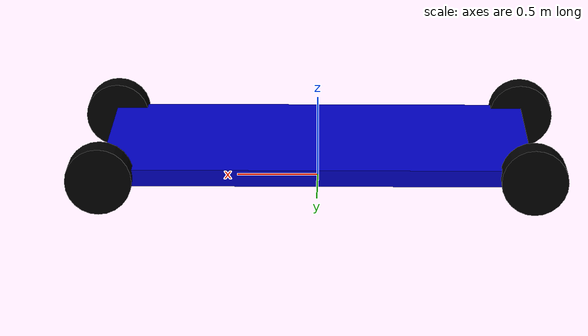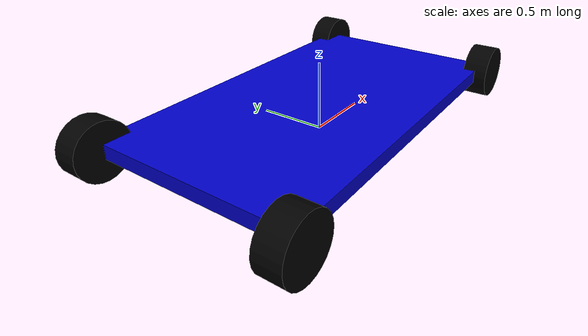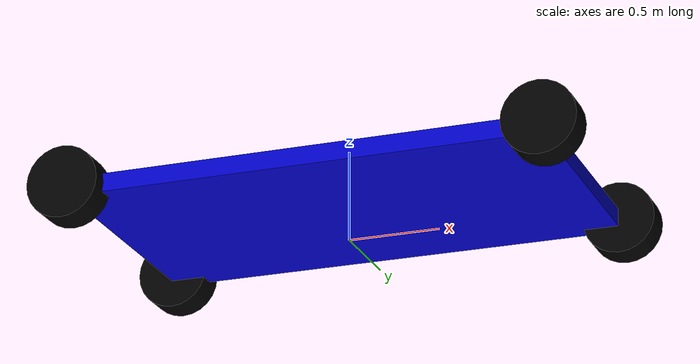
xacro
<?xml version="1.0"?>

<robot name="AckVcl" xmlns:xacro="http://ros.org/wiki/xacro">

 <xacro:property name="chassis_dx" value="2.6" />
 <xacro:property name="chassis_dy" value="1.5" />
 <xacro:property name="chassis_dz" value="0.1" />
 <xacro:property name="wheel_radius" value="0.2" />
 <xacro:property name="wheel_width" value="0.18" />
 <xacro:property name="chassis_z0" value="0.2" />

  <xacro:property name="pi" value="3.1415" />

 <xacro:property name="wheel_x0" value="${chassis_dx/2}" />
 <xacro:property name="wheel_y0" value="${(chassis_dy/2)  + (0.6*wheel_width)}" />

 <xacro:property name="steer_limit" value="${90.0 * pi/180.0}" />
 <xacro:property name="caster_angle" value="0.2" />

 <xacro:property name="chassis_mass" value="1604" />
 <xacro:property name="wheel_mass" value="3" />

  <material name="blue">
    <color rgba="0 0 0.8 1"/>
  </material>

  <material name="black">
    <color rgba="0 0 0 1"/>
  </material>

  <material name="white">
    <color rgba="1 1 1 1"/>
  </material>

  <xacro:macro name="Inertia_Parameters_Chassis" params="mass">
    <inertial>
      <mass value="${mass}" />
      <inertia ixx="${mass/12.0 * (chassis_dy*chassis_dy + chassis_dz*chassis_dz)}" ixy="0.0" ixz="0.0" iyy="${mass/12.0 * (chassis_dz*chassis_dz + chassis_dx*chassis_dx)}" iyz="0.0" izz="${mass/12.0 * (chassis_dx*chassis_dx + chassis_dy*chassis_dy)}" />
    </inertial>
  </xacro:macro>

  <xacro:macro name="Inertia_Parameters_Wheel" params="mass">
    <inertial>
      <mass value="${mass}"/>
      <inertia ixx="${mass * (wheel_radius**2 / 4.0 + wheel_width*wheel_width / 12.0)}" ixy="0.0" ixz="0.0" iyy="${mass * (wheel_radius**2 / 4.0 + wheel_width*wheel_width / 12.0)}" iyz="0.0" izz="${mass/2.0 * wheel_radius*wheel_radius}" />
    </inertial>
  </xacro:macro>

  <xacro:macro name="Front_Wheel_Hub" params="prefix suffix xreflect yreflect mass">
  	<link name="${prefix}_${suffix}_Wheel_Hub">
        <visual>
            <geometry>
                <cylinder radius="${wheel_radius/2.0}" length="${wheel_width/2.0}"/>
            </geometry>
            <origin xyz="0 0 0" rpy="${pi/2} 0 0"/>
            <material name="white"/>
        </visual>
        <collision>
            <geometry>
                <cylinder radius="${wheel_radius/2.0}" length="${wheel_width/2.0}"/>
            </geometry>
            <origin xyz="0 0 0" rpy="${pi/2} 0 0"/>
        </collision>
        <xacro:Inertia_Parameters_Wheel mass="${wheel_mass/6.0}"/>
    </link>

    <joint name="Front_Wheel_${suffix}_Wheel_joint_Steer" type="revolute">
      <axis xyz="1 0 0" rpy="0 0 0" />
      <limit effort="1000.0" lower="${-steer_limit}" upper="${steer_limit}" velocity="0.80"/>
      <parent link="base_link"/>
      <child link="${prefix}_${suffix}_Wheel_Hub"/>
      <origin xyz="${xreflect*chassis_dx/2} ${yreflect*chassis_dy/2} ${wheel_radius}" rpy="0 ${pi/2} 0"/>
    </joint>

    <transmission name="Front_${suffix}_hub_wheel_trans">
    <type>transmission_interface/SimpleTransmission</type>
    <actuator name="Front_${suffix}_hub_wheel_motor">
      <mechanicalReduction>1</mechanicalReduction>
    </actuator>
    <joint name="Front_Wheel_${suffix}_Wheel_joint_Steer">
      <hardwareInterface>hardware_interface/PositionJointInterface</hardwareInterface>
    </joint>
    </transmission>
  </xacro:macro>

  <xacro:macro name="Front_Wheel" params="prefix suffix xreflect yreflect mass">
    <link name="${prefix}_${suffix}_Wheel">
        <visual>
            <geometry>
                <cylinder radius="${wheel_radius}" length="${wheel_width}"/>
            </geometry>
            <origin xyz="0 0 0" rpy="${pi/2} 0 0"/>
            <material name="black"/>
        </visual>
        <collision>
            <geometry>
                <cylinder radius="${wheel_radius}" length="${wheel_width}"/>
            </geometry>
            <origin xyz="0 0 0" rpy="${pi/2} 0 0"/>
        </collision>
        <xacro:Inertia_Parameters_Wheel mass="${wheel_mass}"/>
    </link>
	<joint name="Front_Wheel_${suffix}_Wheel_joint_Drive" type="continuous">
	 <axis xyz="0 1 0" rpy="0 0 0" />
	 <parent link="${prefix}_${suffix}_Wheel_Hub"/>
      <child link="${prefix}_${suffix}_Wheel"/>
      <origin xyz="0 0 0" rpy="0 ${pi/2} 0"/>
    </joint>

    <gazebo reference="${prefix}_${suffix}_Wheel">
	<mu1 value="10000000.0"/>
	<mu2 value="10000000.0"/>
	<kp value="10000000.0" />
	<kd value="10000000" />
	<material>Gazebo/Blue</material>
  </gazebo>

    <transmission name="Front_Wheel_${suffix}_Wheel_trans">
    <type>transmission_interface/SimpleTransmission</type>
    <actuator name="Front_Wheel_${suffix}_Wheel_motor">
      <mechanicalReduction>1</mechanicalReduction>
    </actuator>
    <joint name="Front_Wheel_${suffix}_Wheel_joint_Drive">
      <hardwareInterface>hardware_interface/VelocityJointInterface</hardwareInterface>
    </joint>
    </transmission>
  </xacro:macro>

  <xacro:macro name="Rear_Wheel" params="prefix suffix xreflect yreflect mass">
    <link name="${prefix}_${suffix}_Wheel">
        <visual>
            <geometry>
                <cylinder radius="${wheel_radius}" length="${wheel_width}"/>
            </geometry>
            <origin xyz="0 0 0" rpy="${pi/2} 0 0"/>
            <material name="black"/>
        </visual>
        <collision>
            <geometry>
                <cylinder radius="${wheel_radius}" length="${wheel_width}"/>
            </geometry>
            <origin xyz="0 0 0" rpy="${pi/2} 0 0"/>
        </collision>
        <xacro:Inertia_Parameters_Wheel mass="${wheel_mass}"/>
    </link>

  <joint name="Rear_Wheel_${suffix}_Wheel_joint" type="continuous">
      <axis xyz="0 1 0" rpy="0 0 0" />
      <parent link="base_link"/>
      <child link="${prefix}_${suffix}_Wheel"/>
      <origin xyz="${xreflect*chassis_dx/2} ${yreflect*chassis_dy/2} ${wheel_radius}" rpy="0 ${pi/2} 0"/>
    </joint>

   <gazebo reference="${prefix}_${suffix}_Wheel">
	<mu1 value="10000000.0"/>
	<mu2 value="10000000.0"/>
	<kp value="10000000.0" />
	<kd value="10000000.0" />
	<material>Gazebo/Red</material>
  </gazebo>

   <transmission name="${suffix}_wheel_trans">
    <type>transmission_interface/SimpleTransmission</type>
    <actuator name="${suffix}_wheel_motor">
      <mechanicalReduction>1</mechanicalReduction>
    </actuator>
    <joint name="Rear_Wheel_${suffix}_Wheel_joint">
      <hardwareInterface>hardware_interface/VelocityJointInterface</hardwareInterface>
    </joint>
    </transmission>
  </xacro:macro>

 <link name="base_link">
    <visual>
    <origin xyz="0 0 ${chassis_z0}" rpy="0 0 0" />
      <geometry>
        <box size="${chassis_dx} ${chassis_dy} ${chassis_dz}"/>
      </geometry>
      <material name="blue"/>
    </visual>
    <collision>
    	 <origin xyz="0 0 ${chassis_z0}" rpy="0 0 0" />
      <geometry>
        <box size="${chassis_dx} ${chassis_dy} ${chassis_dz}"/>
      </geometry>
    </collision>
    <xacro:Inertia_Parameters_Chassis mass="${chassis_mass}"/>

    <joint name="base_link_joint" type="floating">
      <parent link="odom"/>
      <child link="base_link"/>
      <origin xyz="0 0 0" rpy="0 0 0"/>
    </joint>

    <gazebo reference="base_link">
    	<material>Gazebo/Orange</material>
    </gazebo>

  </link>

  <xacro:Front_Wheel_Hub prefix="Front" suffix="Right" xreflect="1" yreflect="-1" mass="${wheel_mass}"/>
  <xacro:Front_Wheel prefix="Front" suffix="Right" xreflect="1" yreflect="-1" mass="${wheel_mass}"/>
  <xacro:Front_Wheel_Hub prefix="Front" suffix="Left" xreflect="1" yreflect="1" mass="${wheel_mass}"/>
  <xacro:Front_Wheel prefix="Front" suffix="Left" xreflect="1" yreflect="1" mass="${wheel_mass}"/>

  <xacro:Rear_Wheel  prefix="Rear" suffix="Right" xreflect="-1" yreflect="-1" mass="${wheel_mass}"/>
  <xacro:Rear_Wheel  prefix="Rear" suffix="Left" xreflect="-1" yreflect="1" mass="${wheel_mass}"/>

  <!-- Gazebo plugin for ROS Control -->
  <gazebo>
    <plugin name="gazebo_ros_control" filename="libgazebo_ros_control.so">
      <robotNamespace>/</robotNamespace>
      <robotSimType>gazebo_ros_control/DefaultRobotHWSim</robotSimType>
      <legacyModeNS>true</legacyModeNS>
    </plugin>
  </gazebo>

</robot>
